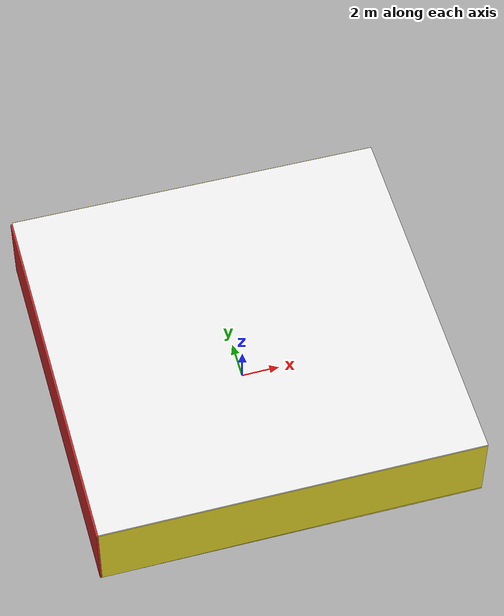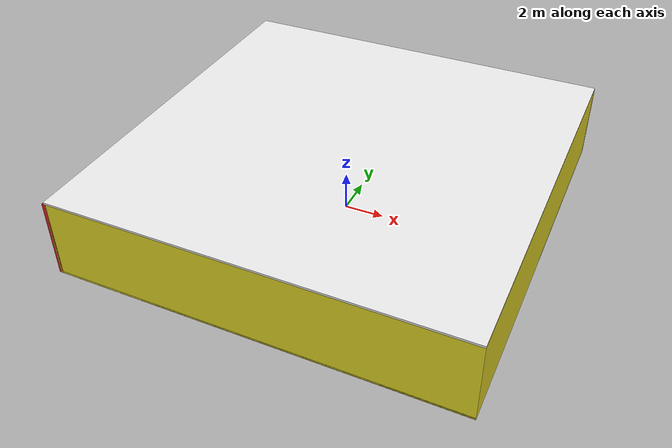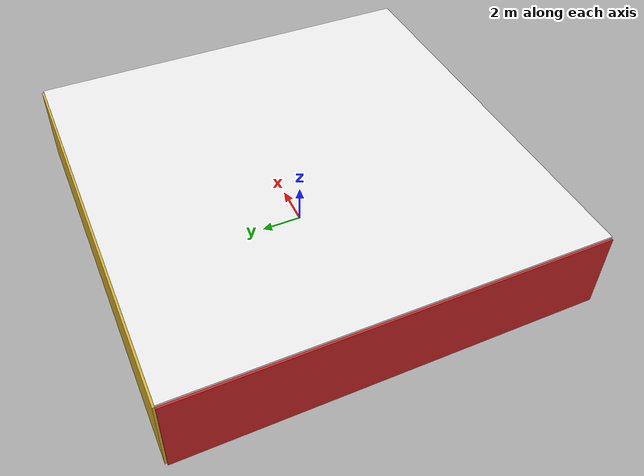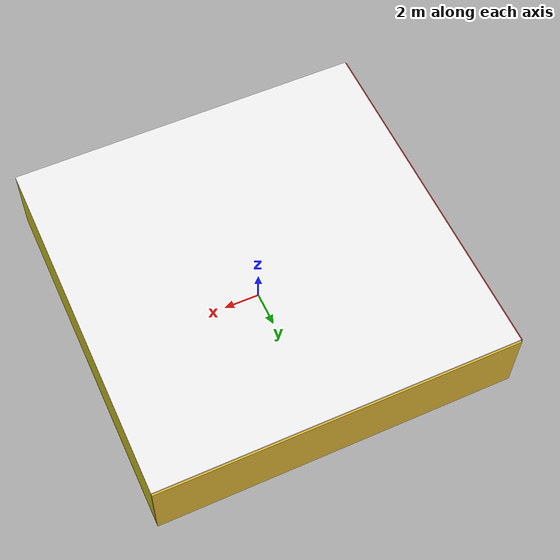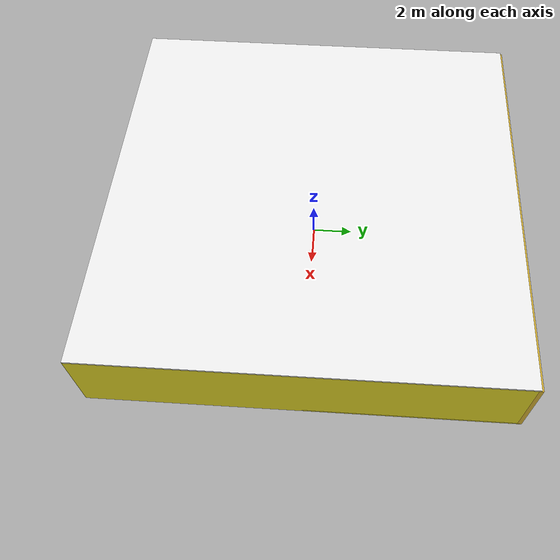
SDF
<sdf version="1.4">
 <world name="default">
  <physics type="ode">
   <max_step_size>0.001</max_step_size>
   <real_time_factor>1</real_time_factor>
   <real_time_update_rate>1000</real_time_update_rate>
   <gravity>0 0 -9.8</gravity>
  </physics>
  <scene><ambient>0.4 0.4 0.4 1</ambient><background>0.7 0.7 0.7 1</background><shadows>1</shadows></scene>
  <model name="Surrounding">
   <static>1</static>
   <link name="Ceiling">
    <collision name="Ceiling_Collision"><geometry><box><size>20 20 0.1</size></box></geometry></collision>
    <visual name="Ceiling_Visual">
     <geometry><box><size>20 20 0.1</size></box></geometry>
     <material>
      <script><uri>file://media/materials/scripts/gazebo.material</uri><name>Gazebo/White</name></script>
     </material>
    </visual>
    <pose>0 0 4.05 0 0 0</pose>
   </link>
   <link name="Wall_South">
    <collision name="Wall_South_Collision">
     <geometry><box><size>20 0 4</size></box></geometry>
     <pose>0 0 2 0 -0 0</pose>
    </collision>
    <visual name="Wall_South_Visual">
     <pose>0 0 2 0 -0 0</pose>
     <geometry><box><size>20 0 4</size></box></geometry>
     <material>
      <script><uri>file://media/materials/scripts/gazebo.material</uri><name>Gazebo/Yellow</name></script>
     </material>
    </visual>
    <velocity_decay><linear>0</linear><angular>0</angular></velocity_decay>
    <pose>0 -10 0 0 -0 0</pose>
   </link>
   <link name="Wall_East">
    <collision name="Wall_21_Collision">
     <geometry><box><size>20 0 4</size></box></geometry>
     <pose>0 0 2 0 -0 0</pose>
    </collision>
    <visual name="Wall_21_Visual">
     <pose>0 0 2 0 -0 0</pose>
     <geometry><box><size>20 0 4</size></box></geometry>
     <material>
      <script><uri>file://media/materials/scripts/gazebo.material</uri><name>Gazebo/Yellow</name></script>
     </material>
    </visual>
    <velocity_decay><linear>0</linear><angular>0</angular></velocity_decay>
    <pose>10 0 0 0 -0 1.5708</pose>
   </link>
   <link name="Wall_North">
    <collision name="Wall_22_Collision">
     <geometry><box><size>20 0.2 4</size></box></geometry>
     <pose>0 0 2 0 -0 0</pose>
    </collision>
    <visual name="Wall_22_Visual">
     <pose>0 0 2 0 -0 0</pose>
     <geometry><box><size>20 0.2 4</size></box></geometry>
     <material>
      <script><uri>file://media/materials/scripts/gazebo.material</uri><name>Gazebo/Gold</name></script>
     </material>
    </visual>
    <velocity_decay><linear>0</linear><angular>0</angular></velocity_decay>
    <pose>0 10 0 0 -0 0</pose>
   </link>
   <link name="Wall_West">
    <collision name="Wall_23_Collision">
     <geometry><box><size>20 0.2 4</size></box></geometry>
     <pose>0 0 2 0 -0 0</pose>
    </collision>
    <visual name="Wall_23_Visual">
     <pose>0 0 2 0 -0 0</pose>
     <geometry><box><size>20 0.2 4</size></box></geometry>
     <material>
      <script><uri>file://media/materials/scripts/gazebo.material</uri><name>Gazebo/RedGlow</name></script>
     </material>
    </visual>
    <velocity_decay><linear>0</linear><angular>0</angular></velocity_decay>
    <pose>-10 0 0 0 0 -1.5708</pose>
   </link>
   <link name="Ground_link">
    <collision name="collision">
     <pose>0 0 .05 0 -0 0</pose>
     <geometry><box><size>20 20 0.1</size></box></geometry>
    </collision>
    <visual name="visual">
     <pose>0 0 .05 0 -0 0</pose>
     <geometry><box><size>20 20 0.1</size></box></geometry>
     <material>
      <script><uri>file://media/materials/scripts/gazebo.material</uri><name>Gazebo/Yellow</name></script>
     </material>
    </visual>
   </link>
   <static>1</static>
  </model>
  <spherical_coordinates>
   <surface_model>EARTH_WGS84</surface_model>
   <latitude_deg>0</latitude_deg>
   <longitude_deg>0</longitude_deg>
   <elevation>0</elevation>
   <heading_deg>0</heading_deg>
  </spherical_coordinates>
  <light name="lightball_0" type="diffuse">
   <diffuse>0.8 0.8 0.8 1</diffuse>
   <specular>0.2 0.2 0.2 1</specular>
   <attenuation>
    <range>100</range>
    <constant>0.7</constant>
    <linear>0.01</linear>
    <quadratic>0.001</quadratic>
   </attenuation>
   <direction>-0.5 0.1 -0.9</direction>
   <pose>-5.61665596737 -0.0614746726205 0.754320623696 0 0 0</pose>
  </light>
  <light name="lightball_1" type="diffuse">
   <diffuse>0.8 0.8 0.8 1</diffuse>
   <specular>0.2 0.2 0.2 1</specular>
   <attenuation>
    <range>100</range>
    <constant>0.7</constant>
    <linear>0.01</linear>
    <quadratic>0.001</quadratic>
   </attenuation>
   <direction>-0.5 0.1 -0.9</direction>
   <pose>2.51207340346 5.27756834314 3.0244916946 0 0 0</pose>
  </light>
  <light name="lightball_2" type="diffuse">
   <diffuse>0.8 0.8 0.8 1</diffuse>
   <specular>0.2 0.2 0.2 1</specular>
   <attenuation>
    <range>100</range>
    <constant>0.7</constant>
    <linear>0.01</linear>
    <quadratic>0.001</quadratic>
   </attenuation>
   <direction>-0.5 0.1 -0.9</direction>
   <pose>1.4536325378 -2.04083765456 0.599442384439 0 0 0</pose>
  </light>
  <light name="lightball_3" type="diffuse">
   <diffuse>0.8 0.8 0.8 1</diffuse>
   <specular>0.2 0.2 0.2 1</specular>
   <attenuation>
    <range>100</range>
    <constant>0.7</constant>
    <linear>0.01</linear>
    <quadratic>0.001</quadratic>
   </attenuation>
   <direction>-0.5 0.1 -0.9</direction>
   <pose>-3.83497715995 -4.23552196951 2.49772286534 0 0 0</pose>
  </light>
  <light name="lightball_4" type="diffuse">
   <diffuse>0.8 0.8 0.8 1</diffuse>
   <specular>0.2 0.2 0.2 1</specular>
   <attenuation>
    <range>100</range>
    <constant>0.7</constant>
    <linear>0.01</linear>
    <quadratic>0.001</quadratic>
   </attenuation>
   <direction>-0.5 0.1 -0.9</direction>
   <pose>-7.84237354264 -6.41079774979 2.57854822392 0 0 0</pose>
  </light>
  <light name="lightball_5" type="diffuse">
   <diffuse>0.8 0.8 0.8 1</diffuse>
   <specular>0.2 0.2 0.2 1</specular>
   <attenuation>
    <range>100</range>
    <constant>0.7</constant>
    <linear>0.01</linear>
    <quadratic>0.001</quadratic>
   </attenuation>
   <direction>-0.5 0.1 -0.9</direction>
   <pose>3.2249796989 8.64574347728 3.79435326448 0 0 0</pose>
  </light>
  <light name="lightball_6" type="diffuse">
   <diffuse>0.8 0.8 0.8 1</diffuse>
   <specular>0.2 0.2 0.2 1</specular>
   <attenuation>
    <range>100</range>
    <constant>0.7</constant>
    <linear>0.01</linear>
    <quadratic>0.001</quadratic>
   </attenuation>
   <direction>-0.5 0.1 -0.9</direction>
   <pose>0.404919900049 -8.09002601257 0.929717907514 0 0 0</pose>
  </light>
  <light name="lightball_7" type="diffuse">
   <diffuse>0.8 0.8 0.8 1</diffuse>
   <specular>0.2 0.2 0.2 1</specular>
   <attenuation>
    <range>100</range>
    <constant>0.7</constant>
    <linear>0.01</linear>
    <quadratic>0.001</quadratic>
   </attenuation>
   <direction>-0.5 0.1 -0.9</direction>
   <pose>-8.32171295351 -0.186090253403 2.57981943095 0 0 0</pose>
  </light>
  <light name="lightball_8" type="diffuse">
   <diffuse>0.8 0.8 0.8 1</diffuse>
   <specular>0.2 0.2 0.2 1</specular>
   <attenuation>
    <range>100</range>
    <constant>0.7</constant>
    <linear>0.01</linear>
    <quadratic>0.001</quadratic>
   </attenuation>
   <direction>-0.5 0.1 -0.9</direction>
   <pose>-0.0108353211555 -3.53972530058 3.82436957598 0 0 0</pose>
  </light>
  <light name="lightball_9" type="diffuse">
   <diffuse>0.8 0.8 0.8 1</diffuse>
   <specular>0.2 0.2 0.2 1</specular>
   <attenuation>
    <range>100</range>
    <constant>0.7</constant>
    <linear>0.01</linear>
    <quadratic>0.001</quadratic>
   </attenuation>
   <direction>-0.5 0.1 -0.9</direction>
   <pose>-1.06718933855 -2.37491867208 1.14059187869 0 0 0</pose>
  </light>
  <light name="lightball_10" type="diffuse">
   <diffuse>0.8 0.8 0.8 1</diffuse>
   <specular>0.2 0.2 0.2 1</specular>
   <attenuation>
    <range>100</range>
    <constant>0.7</constant>
    <linear>0.01</linear>
    <quadratic>0.001</quadratic>
   </attenuation>
   <direction>-0.5 0.1 -0.9</direction>
   <pose>-6.94400795184 -9.44829893843 0.737088450747 0 0 0</pose>
  </light>
  <light name="lightball_11" type="diffuse">
   <diffuse>0.8 0.8 0.8 1</diffuse>
   <specular>0.2 0.2 0.2 1</specular>
   <attenuation>
    <range>100</range>
    <constant>0.7</constant>
    <linear>0.01</linear>
    <quadratic>0.001</quadratic>
   </attenuation>
   <direction>-0.5 0.1 -0.9</direction>
   <pose>-2.42208971196 8.11617489718 0.603256972556 0 0 0</pose>
  </light>
  <light name="lightball_12" type="diffuse">
   <diffuse>0.8 0.8 0.8 1</diffuse>
   <specular>0.2 0.2 0.2 1</specular>
   <attenuation>
    <range>100</range>
    <constant>0.7</constant>
    <linear>0.01</linear>
    <quadratic>0.001</quadratic>
   </attenuation>
   <direction>-0.5 0.1 -0.9</direction>
   <pose>-0.398546419472 7.58844715375 1.08446396045 0 0 0</pose>
  </light>
  <light name="lightball_13" type="diffuse">
   <diffuse>0.8 0.8 0.8 1</diffuse>
   <specular>0.2 0.2 0.2 1</specular>
   <attenuation>
    <range>100</range>
    <constant>0.7</constant>
    <linear>0.01</linear>
    <quadratic>0.001</quadratic>
   </attenuation>
   <direction>-0.5 0.1 -0.9</direction>
   <pose>-5.76845001822 -0.583320422856 3.36815310526 0 0 0</pose>
  </light>
  <include><uri>model://table</uri><pose>-6.48223962501 -4.03710018238 0 0 0 0.487931235449</pose></include>
  <include><uri>model://cabinet</uri><pose>-4.79878391129 -2.30122664691 0 0 0 2.81377541887</pose></include>
  <include>
   <uri>model://robocup_3Dsim_goal</uri>
   <pose>-4.69122158894 3.35367240915 0 0 0 2.29094930222</pose>
  </include>
  <include><uri>model://cabinet</uri><pose>-1.55651233372 -5.15402101582 0 0 0 2.56707888842</pose></include>
  <include>
   <uri>model://textured_shapes</uri>
   <pose>-0.486015316738 3.80914251818 0 0 0 2.27948839297</pose>
  </include>
  <include><uri>model://cabinet</uri><pose>-1.56579842274 8.13005125535 0 0 0 0.364579443061</pose></include>
  <include>
   <uri>model://textured_shapes</uri>
   <pose>4.79688381714 -8.3625624214 0 0 0 1.70982187231</pose>
  </include>
 </world>
</sdf>

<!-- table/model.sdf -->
<sdf version="1.5">
  <model name="table">
    <static>true</static>
    <link name="link">
      <collision name="surface">
        <pose>0 0 1.0 0 0 0</pose>
        <geometry>
          <box>
            <size>1.5 0.8 0.03</size>
          </box>
        </geometry>
        <surface>
          <friction>
            <ode>
              <mu>0.6</mu>
              <mu2>0.6</mu2>
            </ode>
          </friction>
        </surface>
      </collision>
      <visual name="visual1">
        <pose>0 0 1.0 0 0 0</pose>
        <geometry>
          <box>
            <size>1.5 0.8 0.03</size>
          </box>
        </geometry>
        <material>
          <script>
            <uri>model://media/materials/scripts/gazebo.material</uri>
            <name>Gazebo/Wood</name>
          </script>
        </material>
      </visual>
      <collision name="front_left_leg">
        <pose>0.68 0.38 0.5 0 0 0</pose>
        <geometry>
          <cylinder>
            <radius>0.02</radius>
            <length>1.0</length>
          </cylinder>
        </geometry>
      </collision>
      <visual name="front_left_leg">
        <pose>0.68 0.38 0.5 0 0 0</pose>
        <geometry>
          <cylinder>
            <radius>0.02</radius>
            <length>1.0</length>
          </cylinder>
        </geometry>
        <material>
          <script>
            <uri>model://media/materials/scripts/gazebo.material</uri>
            <name>Gazebo/Grey</name>
          </script>
        </material>
      </visual>
      <collision name="front_right_leg">
        <pose>0.68 -0.38 0.5 0 0 0</pose>
        <geometry>
          <cylinder>
            <radius>0.02</radius>
            <length>1.0</length>
          </cylinder>
        </geometry>
      </collision>
      <visual name="front_right_leg">
        <pose>0.68 -0.38 0.5 0 0 0</pose>
        <geometry>
          <cylinder>
            <radius>0.02</radius>
            <length>1.0</length>
          </cylinder>
        </geometry>
        <material>
          <script>
            <uri>model://media/materials/scripts/gazebo.material</uri>
            <name>Gazebo/Grey</name>
          </script>
        </material>
      </visual>
      <collision name="back_right_leg">
        <pose>-0.68 -0.38 0.5 0 0 0</pose>
        <geometry>
          <cylinder>
            <radius>0.02</radius>
            <length>1.0</length>
          </cylinder>
        </geometry>
      </collision>
      <visual name="back_right_leg">
        <pose>-0.68 -0.38 0.5 0 0 0</pose>
        <geometry>
          <cylinder>
            <radius>0.02</radius>
            <length>1.0</length>
          </cylinder>
        </geometry>
        <material>
          <script>
            <uri>model://media/materials/scripts/gazebo.material</uri>
            <name>Gazebo/Grey</name>
          </script>
        </material>
      </visual>
      <collision name="back_left_leg">
        <pose>-0.68 0.38 0.5 0 0 0</pose>
        <geometry>
          <cylinder>
            <radius>0.02</radius>
            <length>1.0</length>
          </cylinder>
        </geometry>
      </collision>
      <visual name="back_left_leg">
        <pose>-0.68 0.38 0.5 0 0 0</pose>
        <geometry>
          <cylinder>
            <radius>0.02</radius>
            <length>1.0</length>
          </cylinder>
        </geometry>
        <material>
          <script>
            <uri>model://media/materials/scripts/gazebo.material</uri>
            <name>Gazebo/Grey</name>
          </script>
        </material>
      </visual>
    </link>
  </model>
</sdf>

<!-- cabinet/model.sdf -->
<sdf version="1.5">
  <model name="cabinet">
    <static>true</static>
    <link name="cabinet_bottom_plate">
      <inertial>
        <pose>0 0 -1 0 0 0</pose>
        <inertia>
          <ixx>2.050000</ixx>
          <ixy>0</ixy>
          <ixz>0</ixz>
          <iyy>2.050000</iyy>
          <iyz>0</iyz>
          <izz>2.050000</izz>
        </inertia>
        <mass>25.000000</mass>
      </inertial>
      <collision name="cabinet_bottom_plate_geom">
        <pose>0 0 0.010000 0 0 0</pose>
        <geometry>
          <box>
            <size>0.450000 0.450000 0.020000</size>
          </box>
        </geometry>
      </collision>
      <visual name="cabinet_bottom_plate_geom_visual">
        <pose>0 0 0.010000 0 0 0</pose>
        <geometry>
          <box>
            <size>0.450000 0.450000 0.020000</size>
          </box>
        </geometry>
        <material>
          <script>
            <uri>model://media/materials/scripts/gazebo.material</uri>
            <name>Gazebo/Wood</name>
          </script>
        </material>
      </visual>
      <collision name="cabinet_bottom_plate_geom_cabinet_back_plate">
        <pose>0.235000 0 0.510000 0 0 0</pose>
        <geometry>
          <box>
            <size>0.020000 0.450000 1.020000</size>
          </box>
        </geometry>
      </collision>
      <visual name="cabinet_bottom_plate_geom_cabinet_back_plate_visual">
        <pose>0.235000 0 0.510000 0 0 0</pose>
        <geometry>
          <box>
            <size>0.020000 0.450000 1.020000</size>
          </box>
        </geometry>
        <material>
          <script>
            <uri>model://media/materials/scripts/gazebo.material</uri>
            <name>Gazebo/Wood</name>
          </script>
        </material>
      </visual>
      <collision name="cabinet_bottom_plate_geom_cabinet_left_plate">
        <pose>0 0.235000 0.510000 0 0 0</pose>
        <geometry>
          <box>
            <size>0.450000 0.020000 1.020000</size>
          </box>
        </geometry>
      </collision>
      <visual name="cabinet_bottom_plate_geom_cabinet_left_plate_visual">
        <pose>0 0.235000 0.510000 0 0 0</pose>
        <geometry>
          <box>
            <size>0.450000 0.020000 1.020000</size>
          </box>
        </geometry>
        <material>
          <script>
            <uri>model://media/materials/scripts/gazebo.material</uri>
            <name>Gazebo/Wood</name>
          </script>
        </material>
      </visual>
      <collision name="cabinet_bottom_plate_geom_cabinet_middle_plate">
        <pose>0 0 0.510000 0 0 0</pose>
        <geometry>
          <box>
            <size>0.450000 0.450000 0.020000</size>
          </box>
        </geometry>
      </collision>
      <visual name="cabinet_bottom_plate_geom_cabinet_middle_plate_visual">
        <pose>0 0 0.510000 0 0 0</pose>
        <geometry>
          <box>
            <size>0.450000 0.450000 0.020000</size>
          </box>
        </geometry>
        <material>
          <script>
            <uri>model://media/materials/scripts/gazebo.material</uri>
            <name>Gazebo/Wood</name>
          </script>
        </material>
      </visual>
      <collision name="cabinet_bottom_plate_geom_cabinet_right_plate">
        <pose>0 -0.235000 0.510000 0 0 0</pose>
        <geometry>
          <box>
            <size>0.450000 0.020000 1.020000</size>
          </box>
        </geometry>
      </collision>
      <visual name="cabinet_bottom_plate_geom_cabinet_right_plate_visual">
        <pose>0 -0.235000 0.510000 0 0 0</pose>
        <geometry>
          <box>
            <size>0.450000 0.020000 1.020000</size>
          </box>
        </geometry>
        <material>
          <script>
            <uri>model://media/materials/scripts/gazebo.material</uri>
            <name>Gazebo/Wood</name>
          </script>
        </material>
      </visual>
      <collision name="cabinet_bottom_plate_geom_cabinet_top_plate">
        <pose>0 0 1.010000 0 0 0</pose>
        <geometry>
          <box>
            <size>0.450000 0.450000 0.020000</size>
          </box>
        </geometry>
      </collision>
      <visual name="cabinet_bottom_plate_geom_cabinet_top_plate_visual">
        <pose>0 0 1.010000 0 0 0</pose>
        <geometry>
          <box>
            <size>0.450000 0.450000 0.020000</size>
          </box>
        </geometry>
        <material>
          <script>
            <uri>model://media/materials/scripts/gazebo.material</uri>
            <name>Gazebo/Wood</name>
          </script>
        </material>
      </visual>
    </link>
  </model>
</sdf>

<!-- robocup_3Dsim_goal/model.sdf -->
<sdf version="1.5">
  <model name="robocup_3d_goal">
    <static>true</static>
    <link name="left_post">
      <pose>0 1.05 0.45 0 0 0</pose>
      <collision name="collision">
        <geometry>
          <cylinder>
            <radius>0.05</radius>
            <length>0.9</length>
          </cylinder>
        </geometry>
      </collision>
      <visual name="visual">
        <geometry>
          <cylinder>
            <radius>0.05</radius>
            <length>0.9</length>
          </cylinder>
        </geometry>
        <material>
          <script>
            <uri>file://media/materials/scripts/gazebo.material</uri>
            <name>Gazebo/ZincYellow</name>
          </script>
        </material>
      </visual>
    </link>
    <link name="left_support_horiz_lower">
      <pose>0.30 1.05 0.01 0 0 0</pose>
      <collision name="collision">
        <geometry>
          <box>
            <size>0.50 0.02 0.02</size>
          </box>
        </geometry>
      </collision>
      <visual name="visual">
        <geometry>
          <box>
            <size>0.50 0.02 0.02</size>
          </box>
        </geometry>
        <material>
          <script>
            <uri>file://media/materials/scripts/gazebo.material</uri>
            <name>Gazebo/White</name>
          </script>
        </material>
      </visual>
    </link>
    <link name="left_support_horiz_upper">
      <pose>0.30 1.05 0.79 0 0 0</pose>
      <collision name="collision">
        <geometry>
          <box>
            <size>0.50 0.02 0.02</size>
          </box>
        </geometry>
      </collision>
      <visual name="visual">
        <geometry>
          <box>
            <size>0.50 0.02 0.02</size>
          </box>
        </geometry>
        <material>
          <script>
            <uri>file://media/materials/scripts/gazebo.material</uri>
            <name>Gazebo/White</name>
          </script>
        </material>
      </visual>
    </link>
    <link name="left_support_vertical">
      <pose>0.56 1.05 0.4 0 1.5708 0</pose>
      <collision name="collision">
        <geometry>
          <box>
            <size>0.80 0.02 0.02</size>
          </box>
        </geometry>
      </collision>
      <visual name="visual">
        <geometry>
          <box>
            <size>0.80 0.02 0.02</size>
          </box>
        </geometry>
        <material>
          <script>
            <uri>file://media/materials/scripts/gazebo.material</uri>
            <name>Gazebo/White</name>
          </script>
        </material>
      </visual>
    </link>
    <link name="right_support_horiz_lower">
      <pose>0.30 -1.05 0.01 0 0 0</pose>
      <collision name="collision">
        <geometry>
          <box>
            <size>0.50 0.02 0.02</size>
          </box>
        </geometry>
      </collision>
      <visual name="visual">
        <geometry>
          <box>
            <size>0.50 0.02 0.02</size>
          </box>
        </geometry>
        <material>
          <script>
            <uri>file://media/materials/scripts/gazebo.material</uri>
            <name>Gazebo/White</name>
          </script>
        </material>
      </visual>
    </link>
    <link name="right_support_horiz_upper">
      <pose>0.30 -1.05 0.79 0 0 0</pose>
      <collision name="collision">
        <geometry>
          <box>
            <size>0.50 0.02 0.02</size>
          </box>
        </geometry>
      </collision>
      <visual name="visual">
        <geometry>
          <box>
            <size>0.50 0.02 0.02</size>
          </box>
        </geometry>
        <material>
          <script>
            <uri>file://media/materials/scripts/gazebo.material</uri>
            <name>Gazebo/White</name>
          </script>
        </material>
      </visual>
    </link>
    <link name="right_support_vertical">
      <pose>0.56 -1.05 0.4 0 1.5708 0</pose>
      <collision name="collision">
        <geometry>
          <box>
            <size>0.80 0.02 0.02</size>
          </box>
        </geometry>
      </collision>
      <visual name="visual">
        <geometry>
          <box>
            <size>0.80 0.02 0.02</size>
          </box>
        </geometry>
        <material>
          <script>
            <uri>file://media/materials/scripts/gazebo.material</uri>
            <name>Gazebo/White</name>
          </script>
        </material>
      </visual>
    </link>
    <link name="center_support_horiz_lower">
      <pose>0.56 0 0.01 0 1.5708 0</pose>
      <collision name="collision">
        <geometry>
          <box>
            <size>0.02 2.08 0.02</size>
          </box>
        </geometry>
      </collision>
      <visual name="visual">
        <geometry>
          <box>
            <size>0.02 2.08 0.02</size>
          </box>
        </geometry>
        <material>
          <script>
            <uri>file://media/materials/scripts/gazebo.material</uri>
            <name>Gazebo/White</name>
          </script>
        </material>
      </visual>
    </link>
    <link name="center_support_horiz_upper">
      <pose>0.56 0 0.79 0 1.5708 0</pose>
      <collision name="collision">
        <geometry>
          <box>
            <size>0.02 2.08 0.02</size>
          </box>
        </geometry>
      </collision>
      <visual name="visual">
        <geometry>
          <box>
            <size>0.02 2.08 0.02</size>
          </box>
        </geometry>
        <material>
          <script>
            <uri>file://media/materials/scripts/gazebo.material</uri>
            <name>Gazebo/White</name>
          </script>
        </material>
      </visual>
    </link>
    <link name="right_post">
      <pose>0 -1.05 0.45 0 0 0</pose>
      <collision name="collision">
        <geometry>
          <cylinder>
            <radius>0.05</radius>
            <length>0.9</length>
          </cylinder>
        </geometry>
      </collision>
      <visual name="visual">
        <geometry>
          <cylinder>
            <radius>0.05</radius>
            <length>0.9</length>
          </cylinder>
        </geometry>
        <material>
          <script>
            <uri>file://media/materials/scripts/gazebo.material</uri>
            <name>Gazebo/ZincYellow</name>
          </script>
        </material>
      </visual>
    </link>
    <link name="crossbar">
      <pose>0 0 0.85 1.57 1.57 0</pose>
      <collision name="collision">
        <geometry>
          <cylinder>
            <radius>0.05</radius>
            <length>2.0</length>
          </cylinder>
        </geometry>
      </collision>
      <visual name="visual">
        <geometry>
          <cylinder>
            <radius>0.05</radius>
            <length>2.0</length>
          </cylinder>
        </geometry>
        <material>
          <script>
            <uri>file://media/materials/scripts/gazebo.material</uri>
            <name>Gazebo/ZincYellow</name>
          </script>
        </material>
      </visual>
    </link>
    <link name="center_net">
      <pose>0.56 0 0.40 0 0 0</pose>
      <collision name="collision">
        <geometry>
          <box>
            <size>0.01 2.1 0.80</size>
          </box>
        </geometry>
      </collision>
      <visual name="visual">
        <geometry>
          <box>
            <size>0.01 2.1 0.80</size>
          </box>
        </geometry>
        <material>
          <script>
            <uri>model://../model_source/models/robocup09_spl_field/materials/scripts/</uri>
            <uri>model://../model_source/models/robocup09_spl_field/materials/textures/</uri>
            <name>RoboCup/Net</name>
          </script>
        </material>
      </visual>
    </link>
    <link name="left_net">
      <pose>0.30 1.05 0.40 0 0 0</pose>
      <collision name="collision">
        <geometry>
          <box>
            <size>0.50 0.01 0.76</size>
          </box>
        </geometry>
      </collision>
      <visual name="visual">
        <geometry>
          <box>
            <size>0.50 0.01 0.76</size>
          </box>
        </geometry>
        <material>
          <script>
            <uri>model://../model_source/models/robocup09_spl_field/materials/scripts/</uri>
            <uri>model://../model_source/models/robocup09_spl_field/materials/textures/</uri>
            <name>RoboCup/Net</name>
          </script>
        </material>
      </visual>
    </link>
    <link name="right_net">
      <pose>0.30 -1.05 0.40 0 0 0</pose>
      <collision name="collision">
        <geometry>
          <box>
            <size>0.50 0.01 0.76</size>
          </box>
        </geometry>
      </collision>
      <visual name="visual">
        <geometry>
          <box>
            <size>0.50 0.01 0.76</size>
          </box>
        </geometry>
        <material>
          <script>
            <uri>model://../model_source/models/robocup09_spl_field/materials/scripts/</uri>
            <uri>model://../model_source/models/robocup09_spl_field/materials/textures/</uri>
            <name>RoboCup/Net</name>
          </script>
        </material>
      </visual>
    </link>
  </model>
</sdf>

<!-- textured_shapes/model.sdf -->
<sdf version="1.6">
  <model name="textured_shapes">
    <pose>0 0 0.5 0 0 0</pose>
    <link name="box">
      <pose>0 -1.5 0 0 0 0</pose>
      <collision name="collision">
        <geometry>
          <box>
            <size>1 1 1</size>
          </box>
        </geometry>
      </collision>
      <visual name="visual">
        <geometry>
          <box>
            <size>1 1 1</size>
          </box>
        </geometry>
        <material>
          <script>
            <uri>model://../model_source/models/textured_shapes/materials/scripts</uri>
            <uri>model://../model_source/models/textured_shapes/materials/textures</uri>
            <name>TexturedShape/Squares</name>
          </script>
        </material>
      </visual>
    </link>
    <link name="sphere">
      <collision name="collision">
        <geometry>
          <sphere>
            <radius>0.5</radius>
          </sphere>
        </geometry>
      </collision>
      <visual name="visual">
        <geometry>
          <sphere>
            <radius>0.5</radius>
          </sphere>
        </geometry>
        <material>
          <script>
            <uri>model://../model_source/models/textured_shapes/materials/scripts</uri>
            <uri>model://../model_source/models/textured_shapes/materials/textures</uri>
            <name>TexturedShape/Squares</name>
          </script>
        </material>
      </visual>
    </link>
    <link name="cylinder">
      <pose>0 1.5 0 0 0 0</pose>
      <collision name="collision">
        <geometry>
          <cylinder>
            <radius>0.5</radius>
            <length>1</length>
          </cylinder>
        </geometry>
      </collision>
      <visual name="visual">
        <geometry>
          <cylinder>
            <radius>0.5</radius>
            <length>1</length>
          </cylinder>
        </geometry>
        <material>
          <script>
            <uri>model://../model_source/models/textured_shapes/materials/scripts</uri>
            <uri>model://../model_source/models/textured_shapes/materials/textures</uri>
            <name>TexturedShape/Squares</name>
          </script>
        </material>
      </visual>
    </link>
  </model>
</sdf>
